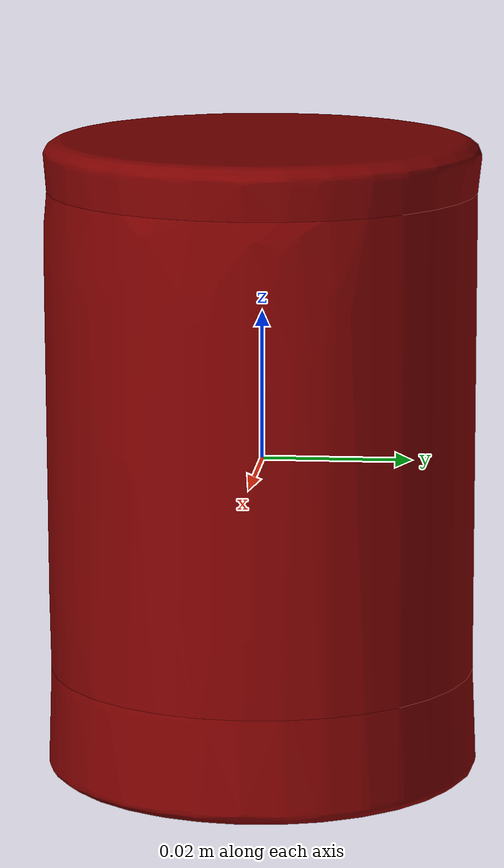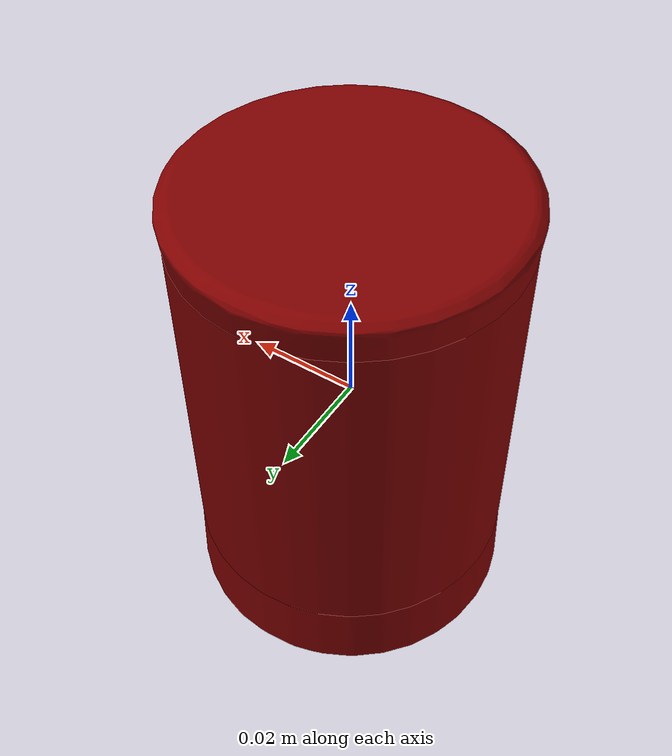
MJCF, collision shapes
<?xml version='1.0' encoding='utf-8'?>
<mujoco model="more_canned_food_5">
  <asset>
    <mesh file="visual/model_normalized_0.obj" name="model_normalized_0_vis" scale="0.08549999999999995 0.08549999999999995 0.08549999999999995" refquat="1.0 0.0 0.0 0.0" />
    <mesh file="visual/model_normalized_1.obj" name="model_normalized_1_vis" scale="0.08549999999999995 0.08549999999999995 0.08549999999999995" refquat="1.0 0.0 0.0 0.0" />
    <mesh file="visual/model_normalized_2.obj" name="model_normalized_2_vis" scale="0.08549999999999995 0.08549999999999995 0.08549999999999995" refquat="1.0 0.0 0.0 0.0" />
    <mesh file="visual/model_normalized_3.obj" name="model_normalized_3_vis" scale="0.08549999999999995 0.08549999999999995 0.08549999999999995" refquat="1.0 0.0 0.0 0.0" />
    <mesh file="visual/model_normalized_4.obj" name="model_normalized_4_vis" scale="0.08549999999999995 0.08549999999999995 0.08549999999999995" refquat="1.0 0.0 0.0 0.0" />
    <material name="Material.010" specular="0.5" shininess="0.780281002" rgba="1.000000 1.000000 1.000000 1.0" />
    <material name="Material.011" specular="0.5" shininess="0.0" rgba="1.000000 1.000000 1.000000 1.0" />
    <material name="Material.012" specular="0.5" shininess="0.525164222" rgba="0.559601 0.016104 0.000000 1.0" />
    <material name="Material.013" specular="0.5" shininess="0.0" rgba="0.651375 0.589361 0.082749 1.0" />
    <material name="material_0.005" specular="0.5" shininess="0.15999998099999999" rgba="1.000000 1.000000 1.000000 1.0" />
    <mesh file="collision/collision_mesh_collision_0.obj" name="canned_collision_mesh_0" scale="0.08549999999999995 0.08549999999999995 0.08549999999999995" refquat="1.0 0.0 0.0 0.0" />
    <mesh file="collision/collision_mesh_collision_1.obj" name="canned_collision_mesh_1" scale="0.08549999999999995 0.08549999999999995 0.08549999999999995" refquat="1.0 0.0 0.0 0.0" />
    <mesh file="collision/collision_mesh_collision_2.obj" name="canned_collision_mesh_2" scale="0.08549999999999995 0.08549999999999995 0.08549999999999995" refquat="1.0 0.0 0.0 0.0" />
  </asset>
  <default>
    <default class="region">
      <geom group="1" conaffinity="0" contype="0" rgba="0 1 0 0" mass="0" />
    </default>
    <default class="collision">
      <geom group="0" rgba="0.5 0 0 0.5" density="1261.462587214" />
    </default>
  </default>
  <worldbody>
    <body>
      <body name="object">
        <geom solimp="0.998 0.998 0.001" solref="0.001 1" density="126.146258721" friction="0.95 0.3 0.1" type="mesh" mesh="model_normalized_0_vis" conaffinity="0" contype="0" group="1" material="material_0.005" />
        <geom solimp="0.998 0.998 0.001" solref="0.001 1" density="126.146258721" friction="0.95 0.3 0.1" type="mesh" mesh="model_normalized_1_vis" conaffinity="0" contype="0" group="1" material="Material.013" />
        <geom solimp="0.998 0.998 0.001" solref="0.001 1" density="126.146258721" friction="0.95 0.3 0.1" type="mesh" mesh="model_normalized_2_vis" conaffinity="0" contype="0" group="1" material="Material.012" />
        <geom solimp="0.998 0.998 0.001" solref="0.001 1" density="126.146258721" friction="0.95 0.3 0.1" type="mesh" mesh="model_normalized_3_vis" conaffinity="0" contype="0" group="1" material="Material.011" />
        <geom solimp="0.998 0.998 0.001" solref="0.001 1" density="126.146258721" friction="0.95 0.3 0.1" type="mesh" mesh="model_normalized_4_vis" conaffinity="0" contype="0" group="1" material="Material.010" />
        <geom class="region" name="reg_bbox" type="box" pos="0.0 0.0 5.129999997299792e-09" size="0.029074202324999982 0.029074202324999982 0.04309011985499998" />
        <geom mesh="canned_collision_mesh_0" type="mesh" class="collision" />
        <geom mesh="canned_collision_mesh_1" type="mesh" class="collision" />
        <geom mesh="canned_collision_mesh_2" type="mesh" class="collision" />
      </body>
    </body>
  </worldbody>
</mujoco>
